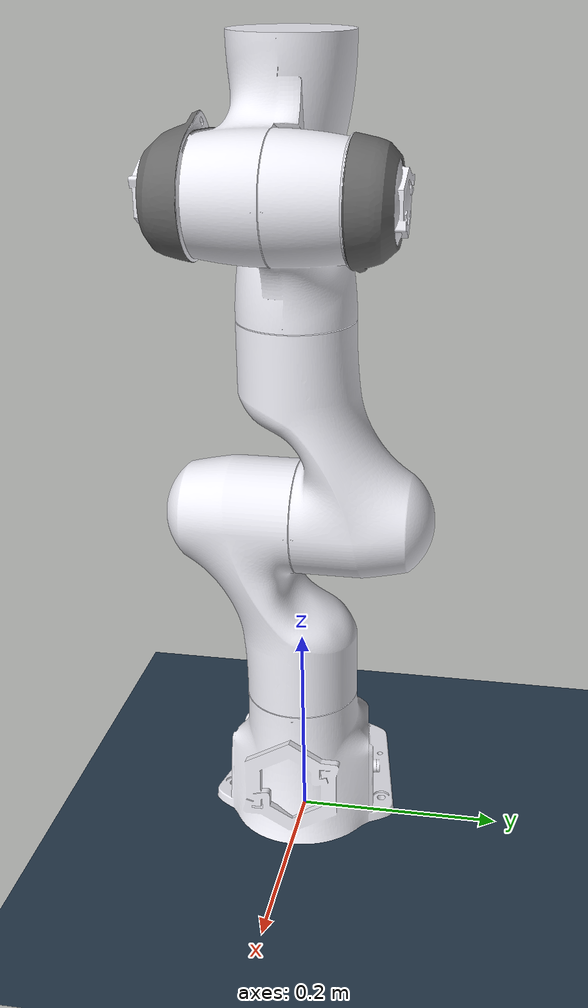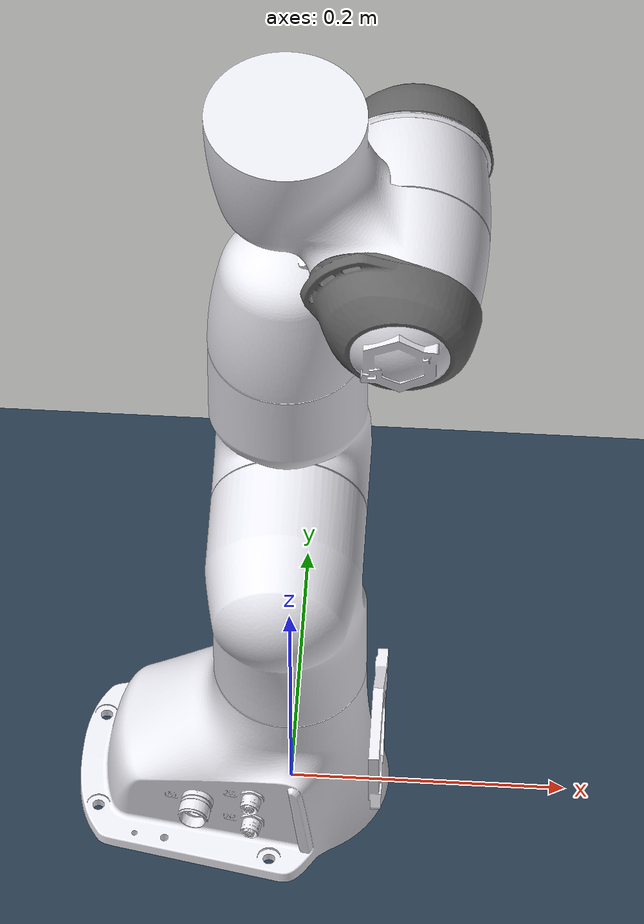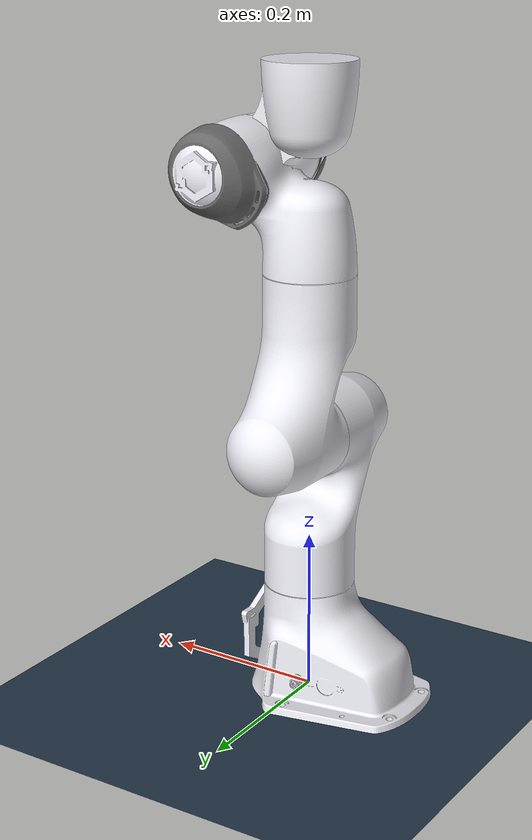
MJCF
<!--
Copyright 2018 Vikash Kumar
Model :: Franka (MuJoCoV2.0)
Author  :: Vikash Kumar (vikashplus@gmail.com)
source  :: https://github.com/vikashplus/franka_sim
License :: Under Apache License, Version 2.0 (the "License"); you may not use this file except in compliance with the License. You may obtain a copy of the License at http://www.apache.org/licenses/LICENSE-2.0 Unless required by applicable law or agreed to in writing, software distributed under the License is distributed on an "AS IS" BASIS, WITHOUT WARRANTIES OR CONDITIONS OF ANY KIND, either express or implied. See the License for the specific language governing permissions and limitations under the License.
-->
<mujoco model="franka_panda v200">

    <include file="assets/basic_scene.xml"/>
    <include file="assets/assets_0.xml"/>
    <compiler meshdir=""/>

    <worldbody>

    <body name="panda0_link0" childclass="panda" pos="0 0 0" >
        <geom class="panda_viz" mesh="link0_viz"/>
        <geom class="panda_col" mesh="link0_col" mass="2.91242"/>
        <body name="panda0_link1" pos="0 0 0.333">
            <joint name="panda0_joint1" range="-2.8973 2.8973" class="panda_arm" damping="1.0"/>
            <geom class="panda_viz" mesh="link1_viz"/>
            <geom class="panda_col" mesh="link1_col" mass="2.7063"/>
            <body name="panda0_link2" pos="0 0 0" quat="0.707107 -0.707107 0 0">
                <joint name="panda0_joint2" range="-1.7628 1.7628" class="panda_arm" damping="1.0"/>
                <geom class="panda_viz" mesh="link2_viz"/>
                <geom class="panda_col" mesh="link2_col" mass="2.73046"/>
                <body name="panda0_link3" pos="0 -0.316 0" quat="0.707107 0.707107 0 0">
                    <joint name="panda0_joint3" range="-2.8973 2.8973" class="panda_arm" damping="1.0"/>
                    <geom class="panda_viz" mesh="link3_viz"/>
                    <geom class="panda_grey_viz" mesh="link3_dark_viz" pos="0 .001 0"/>
                    <geom class="panda_col" mesh="link3_col" mass="2.04104"/>
                    <body name="panda0_link4" pos="0.0825 0 0" quat="0.707107 0.707107 0 0">
                        <joint name="panda0_joint4" range="-3.0718 -0.4" class="panda_arm" damping="1.0"/>
                        <geom class="panda_viz" mesh="link4_viz"/>
                        <geom class="panda_grey_viz" mesh="link4_dark_viz"/>
                        <geom class="panda_col" mesh="link4_col" mass="2.08129"/>
                    </body>
                </body>
            </body>
        </body>
    </body>
    </worldbody>

    <include file='assets/actuator0_0.xml'/>

</mujoco>

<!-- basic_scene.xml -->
<mujocoinclude>

    <asset>
        <texture name="texplane" type="2d" builtin="checker" rgb1=".2 .3 .4" rgb2=".1 0.15 0.2"
                width="512" height="512"/>
        <material name="MatGnd" reflectance="0.5" texture="texplane" texrepeat="1 1" texuniform="true"/>
    </asset>

    <worldbody>
        <light directional="false" diffuse=".8 .8 .8" specular="0.3 0.3 0.3" pos="1  1 3" dir="-1 -1 -3"/>
        <light directional="false" diffuse=".8 .8 .8" specular="0.3 0.3 0.3" pos="1 -1 3" dir="-1 1 -3"/>
        <light directional="false" diffuse=".8 .8 .8" specular="0.3 0.3 0.3" pos="-1 0 3" dir="1 0 -3" />
        <geom name="ground" pos="0 0 0" size="5 5 10" material="MatGnd" type="plane" contype="1" conaffinity="1"/>
    </worldbody>
</mujocoinclude>

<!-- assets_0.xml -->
<mujocoinclude>

    <compiler angle="radian"/>
    <option timestep="0.002"/>
    <size nuser_actuator="5"/>

    <asset>
        <mesh name="link0_col" file="/home/zhouxian/git/Genesis-dev/genesis/assets/xml/franka_sim/meshes/collision/link0.stl"/>
        <mesh name="link1_col" file="/home/zhouxian/git/Genesis-dev/genesis/assets/xml/franka_sim/meshes/collision/link1.stl"/>
        <mesh name="link2_col" file="/home/zhouxian/git/Genesis-dev/genesis/assets/xml/franka_sim/meshes/collision/link2.stl"/>
        <mesh name="link3_col" file="/home/zhouxian/git/Genesis-dev/genesis/assets/xml/franka_sim/meshes/collision/link3.stl"/>
        <mesh name="link4_col" file="/home/zhouxian/git/Genesis-dev/genesis/assets/xml/franka_sim/meshes/collision/link4.stl"/>
        <mesh name="link5_col" file="/home/zhouxian/git/Genesis-dev/genesis/assets/xml/franka_sim/meshes/collision/link5.stl"/>
        <mesh name="link6_col" file="/home/zhouxian/git/Genesis-dev/genesis/assets/xml/franka_sim/meshes/collision/link6.stl"/>
        <mesh name="link7_col" file="/home/zhouxian/git/Genesis-dev/genesis/assets/xml/franka_sim/meshes/collision/link7.stl"/>
        <mesh name="hand_col" file="/home/zhouxian/git/Genesis-dev/genesis/assets/xml/franka_sim/meshes/collision/hand.stl"/>
        <mesh name="link0_viz" file="/home/zhouxian/git/Genesis-dev/genesis/assets/xml/franka_sim/meshes/visual/link0.stl"/>
        <mesh name="link1_viz" file="/home/zhouxian/git/Genesis-dev/genesis/assets/xml/franka_sim/meshes/visual/link1.stl"/>
        <mesh name="link2_viz" file="/home/zhouxian/git/Genesis-dev/genesis/assets/xml/franka_sim/meshes/visual/link2.stl"/>
        <mesh name="link3_viz" file="/home/zhouxian/git/Genesis-dev/genesis/assets/xml/franka_sim/meshes/visual/link3.stl"/>
        <mesh name="link3_dark_viz" file="/home/zhouxian/git/Genesis-dev/genesis/assets/xml/franka_sim/meshes/visual/link3_dark.stl" scale="1.01 1.01 1.01"/>
        <mesh name="link4_viz" file="/home/zhouxian/git/Genesis-dev/genesis/assets/xml/franka_sim/meshes/visual/link4.stl"/>
        <mesh name="link4_dark_viz" file="/home/zhouxian/git/Genesis-dev/genesis/assets/xml/franka_sim/meshes/visual/link4_dark.stl" scale="1.01 1.01 1.01"/>
        <mesh name="link5_viz" file="/home/zhouxian/git/Genesis-dev/genesis/assets/xml/franka_sim/meshes/visual/link5.stl"/>
        <mesh name="link5_dark_viz" file="/home/zhouxian/git/Genesis-dev/genesis/assets/xml/franka_sim/meshes/visual/link5_dark.stl" scale="1.01 1.01 1.01"/>
        <mesh name="link6_viz" file="/home/zhouxian/git/Genesis-dev/genesis/assets/xml/franka_sim/meshes/visual/link6.stl"/>
        <mesh name="link6_dark_viz" file="/home/zhouxian/git/Genesis-dev/genesis/assets/xml/franka_sim/meshes/visual/link6_dark.stl" scale="1.01 1.01 1.01"/>
        <mesh name="link7_viz" file="/home/zhouxian/git/Genesis-dev/genesis/assets/xml/franka_sim/meshes/visual/link7.stl"/>
        <mesh name="link7_dark_viz" file="/home/zhouxian/git/Genesis-dev/genesis/assets/xml/franka_sim/meshes/visual/link7_dark.stl" scale="1.01 1.01 1.01"/>
        <mesh name="hand_viz" file="/home/zhouxian/git/Genesis-dev/genesis/assets/xml/franka_sim/meshes/visual/hand.stl"/>
    </asset>

    <default>
        <default class="panda">
            <joint pos="0 0 0" axis="0 0 1" limited="true"/>
            <position forcelimited="true" ctrllimited="true" user="1002 40 2001 -0.005 0.005"/>
            <default class="panda_viz">
                <geom contype="0" conaffinity="0" group="0" type="mesh" rgba=".92 .92 .95 1"/>
            </default>
            <default class="panda_grey_viz">
                <geom contype="0" conaffinity="0" group="0" type="mesh" rgba=".4 .4 .4 1"/>
            </default>

            <default class="panda_col">
                <geom contype="1" conaffinity="1" group="3" type="mesh" rgba=".5 .6 .7 1"/>
            </default>
            <default class="panda_arm">
                <joint damping="100"/>
            </default>
             <default class="panda_forearm">
                <joint damping="10"/>
            </default>
             <default class="panda_finger">
                <joint damping="100" armature='5'/>
                <geom friction="1 0.5 0.0001" solref="0.01 1" solimp="0.8 0.9 0.001" margin="0.001" user="0" rgba="0.5 0.6 0.7 .4" contype="1" conaffinity="0" condim="6" group="3" />
                <position user="1002 40 2001 -0.0001 0.0001"/>
            </default>
        </default>

    </default>

    <sensor>
        <jointpos name="fr_arm_jp1" joint="panda0_joint1"/>
        <jointpos name="fr_arm_jp2" joint="panda0_joint2"/>
        <jointpos name="fr_arm_jp3" joint="panda0_joint3"/>
        <jointpos name="fr_arm_jp4" joint="panda0_joint4"/>
        <jointvel name="fr_arm_jv1" joint="panda0_joint1"/>
        <jointvel name="fr_arm_jv2" joint="panda0_joint2"/>
        <jointvel name="fr_arm_jv3" joint="panda0_joint3"/>
        <jointvel name="fr_arm_jv4" joint="panda0_joint4"/>
    </sensor>

</mujocoinclude>

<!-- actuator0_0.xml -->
<mujocoinclude>

    <actuator>
        <position name="panda0_joint1" joint="panda0_joint1" class="panda" kp="870" forcerange="-87 87" ctrlrange="-2.9671 2.9671"/> <!-- velocity="2.1750" -->
        <position name="panda0_joint2" joint="panda0_joint2" class="panda" kp="870" forcerange="-87 87" ctrlrange="-1.8326 1.8326"/> <!-- velocity="2.1750" -->
        <position name="panda0_joint3" joint="panda0_joint3" class="panda" kp="870" forcerange="-87 87" ctrlrange="-2.9671 2.9671"/> <!-- velocity="2.1750" -->
        <position name="panda0_joint4" joint="panda0_joint4" class="panda" kp="870" forcerange="-87 87" ctrlrange="-3.1416 0.0"/> <!-- velocity="2.1750" -->
    </actuator>
</mujocoinclude>
